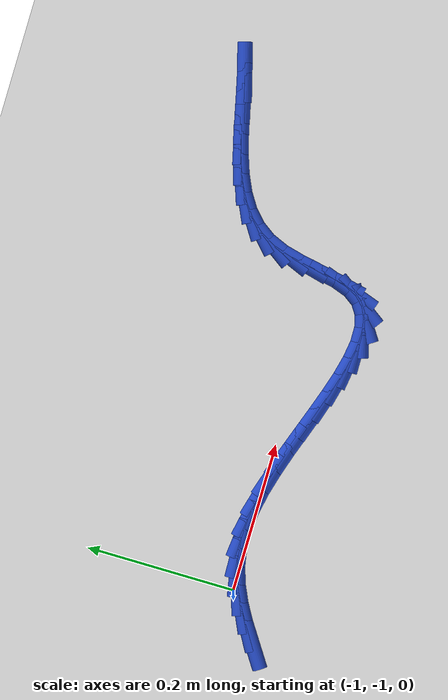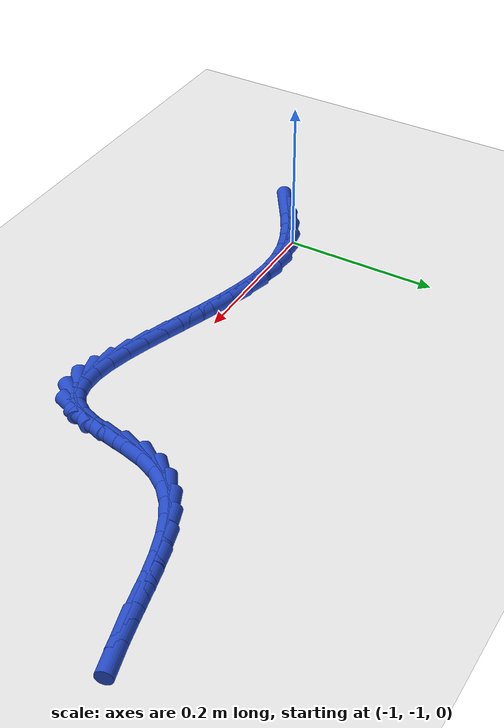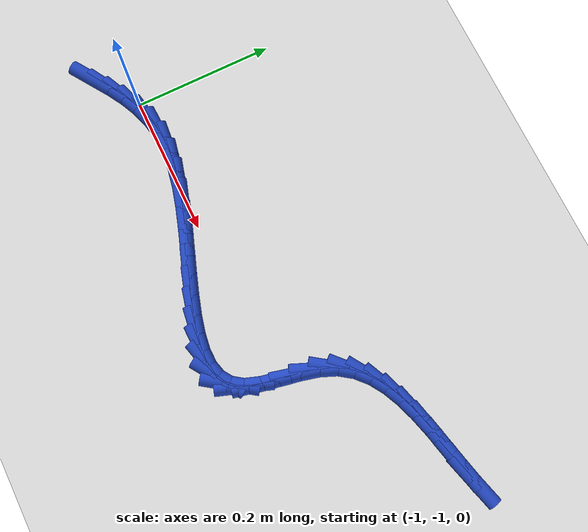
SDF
<sdf version="1.6">
 <world name="default">
  <model name="ground_plane">
   <static>1</static>
   <link name="link">
    <collision name="collision">
     <geometry><plane><normal>0 0 1</normal><size>100 100</size></plane></geometry>
     <surface><friction><ode><mu>100</mu><mu2>50</mu2></ode></friction></surface>
    </collision>
    <visual name="visual">
     <cast_shadows>0</cast_shadows>
     <geometry><plane><normal>0 0 1</normal><size>100 100</size></plane></geometry>
     <material>
      <script><uri>file://media/materials/scripts/gazebo.material</uri><name>Gazebo/WhiteGlow</name></script>
     </material>
    </visual>
   </link>
  </model>
  <model name="line">
   <link name="link_209">
    <pose>-1.0557006349336466 -1.0408302700970928 0.01 0 1.57 0.5857374290560597</pose>
    <collision name="collision">
     <geometry><cylinder><radius>0.01</radius><length>0.08</length></cylinder></geometry>
    </collision>
    <visual name="visual">
     <material>
      <script><name>Gazebo/Blue</name><uri>file://media/materials/scripts/gazebo.material</uri></script>
     </material>
     <geometry><cylinder><radius>0.01</radius><length>0.08</length></cylinder></geometry>
    </visual>
   </link>
   <link name="link_210">
    <pose>-1.0346456365626526 -1.0268623910015922 0.01 0 1.57 0.5234178645726906</pose>
    <collision name="collision">
     <geometry><cylinder><radius>0.01</radius><length>0.08</length></cylinder></geometry>
    </collision>
    <visual name="visual">
     <material>
      <script><name>Gazebo/Blue</name><uri>file://media/materials/scripts/gazebo.material</uri></script>
     </material>
     <geometry><cylinder><radius>0.01</radius><length>0.08</length></cylinder></geometry>
    </visual>
   </link>
   <link name="link_211">
    <pose>-1.0132473027753421 -1.0145132182829506 0.01 0 1.57 0.4349897740252151</pose>
    <collision name="collision">
     <geometry><cylinder><radius>0.01</radius><length>0.08</length></cylinder></geometry>
    </collision>
    <visual name="visual">
     <material>
      <script><name>Gazebo/Blue</name><uri>file://media/materials/scripts/gazebo.material</uri></script>
     </material>
     <geometry><cylinder><radius>0.01</radius><length>0.08</length></cylinder></geometry>
    </visual>
   </link>
   <link name="link_212">
    <pose>-0.9912123797601957 -1.0042741577212928 0.01 0 1.57 0.32106929320845673</pose>
    <collision name="collision">
     <geometry><cylinder><radius>0.01</radius><length>0.08</length></cylinder></geometry>
    </collision>
    <visual name="visual">
     <material>
      <script><name>Gazebo/Blue</name><uri>file://media/materials/scripts/gazebo.material</uri></script>
     </material>
     <geometry><cylinder><radius>0.01</radius><length>0.08</length></cylinder></geometry>
    </visual>
   </link>
   <link name="link_213">
    <pose>-0.9682476137056925 -0.9966366150967435 0.01 0 1.57 0.18572313450105124</pose>
    <collision name="collision">
     <geometry><cylinder><radius>0.01</radius><length>0.08</length></cylinder></geometry>
    </collision>
    <visual name="visual">
     <material>
      <script><name>Gazebo/Blue</name><uri>file://media/materials/scripts/gazebo.material</uri></script>
     </material>
     <geometry><cylinder><radius>0.01</radius><length>0.08</length></cylinder></geometry>
    </visual>
   </link>
   <link name="link_214">
    <pose>-0.9440597508003122 -0.9920919961894272 0.01 0 1.57 0.03750627998569619</pose>
    <collision name="collision">
     <geometry><cylinder><radius>0.01</radius><length>0.08</length></cylinder></geometry>
    </collision>
    <visual name="visual">
     <material>
      <script><name>Gazebo/Blue</name><uri>file://media/materials/scripts/gazebo.material</uri></script>
     </material>
     <geometry><cylinder><radius>0.01</radius><length>0.08</length></cylinder></geometry>
    </visual>
   </link>
   <link name="link_215">
    <pose>-0.918357923162183 -0.9911275639744421 0.01 0 1.57 -0.09862991462200088</pose>
    <collision name="collision">
     <geometry><cylinder><radius>0.01</radius><length>0.08</length></cylinder></geometry>
    </collision>
    <visual name="visual">
     <material>
      <script><name>Gazebo/Blue</name><uri>file://media/materials/scripts/gazebo.material</uri></script>
     </material>
     <geometry><cylinder><radius>0.01</radius><length>0.08</length></cylinder></geometry>
    </visual>
   </link>
   <link name="link_216">
    <pose>-0.8910840752846968 -0.9938263380413902 0.01 0 1.57 -0.1977842412201344</pose>
    <collision name="collision">
     <geometry><cylinder><radius>0.01</radius><length>0.08</length></cylinder></geometry>
    </collision>
    <visual name="visual">
     <material>
      <script><name>Gazebo/Blue</name><uri>file://media/materials/scripts/gazebo.material</uri></script>
     </material>
     <geometry><cylinder><radius>0.01</radius><length>0.08</length></cylinder></geometry>
    </visual>
   </link>
   <link name="link_217">
    <pose>-0.8626049916749433 -0.9995336677197056 0.01 0 1.57 -0.2662324161365486</pose>
    <collision name="collision">
     <geometry><cylinder><radius>0.01</radius><length>0.08</length></cylinder></geometry>
    </collision>
    <visual name="visual">
     <material>
      <script><name>Gazebo/Blue</name><uri>file://media/materials/scripts/gazebo.material</uri></script>
     </material>
     <geometry><cylinder><radius>0.01</radius><length>0.08</length></cylinder></geometry>
    </visual>
   </link>
   <link name="link_218">
    <pose>-0.8333326603073267 -1.007516413372582 0.01 0 1.57 -0.31079991869310475</pose>
    <collision name="collision">
     <geometry><cylinder><radius>0.01</radius><length>0.08</length></cylinder></geometry>
    </collision>
    <visual name="visual">
     <material>
      <script><name>Gazebo/Blue</name><uri>file://media/materials/scripts/gazebo.material</uri></script>
     </material>
     <geometry><cylinder><radius>0.01</radius><length>0.08</length></cylinder></geometry>
    </visual>
   </link>
   <link name="link_219">
    <pose>-0.8036790691562482 -1.0170414353632136 0.01 0 1.57 -0.33565666302193126</pose>
    <collision name="collision">
     <geometry><cylinder><radius>0.01</radius><length>0.08</length></cylinder></geometry>
    </collision>
    <visual name="visual">
     <material>
      <script><name>Gazebo/Blue</name><uri>file://media/materials/scripts/gazebo.material</uri></script>
     </material>
     <geometry><cylinder><radius>0.01</radius><length>0.08</length></cylinder></geometry>
    </visual>
   </link>
   <link name="link_220">
    <pose>-0.7740562061961105 -1.0273755940547946 0.01 0 1.57 -0.34267968783807823</pose>
    <collision name="collision">
     <geometry><cylinder><radius>0.01</radius><length>0.08</length></cylinder></geometry>
    </collision>
    <visual name="visual">
     <material>
      <script><name>Gazebo/Blue</name><uri>file://media/materials/scripts/gazebo.material</uri></script>
     </material>
     <geometry><cylinder><radius>0.01</radius><length>0.08</length></cylinder></geometry>
    </visual>
   </link>
   <link name="link_221">
    <pose>-0.744876059401316 -1.0377857498105196 0.01 0 1.57 -0.3316056495348608</pose>
    <collision name="collision">
     <geometry><cylinder><radius>0.01</radius><length>0.08</length></cylinder></geometry>
    </collision>
    <visual name="visual">
     <material>
      <script><name>Gazebo/Blue</name><uri>file://media/materials/scripts/gazebo.material</uri></script>
     </material>
     <geometry><cylinder><radius>0.01</radius><length>0.08</length></cylinder></geometry>
    </visual>
   </link>
   <link name="link_222">
    <pose>-0.7165506167462664 -1.0475387629935822 0.01 0 1.57 -0.2997462886255494</pose>
    <collision name="collision">
     <geometry><cylinder><radius>0.01</radius><length>0.08</length></cylinder></geometry>
    </collision>
    <visual name="visual">
     <material>
      <script><name>Gazebo/Blue</name><uri>file://media/materials/scripts/gazebo.material</uri></script>
     </material>
     <geometry><cylinder><radius>0.01</radius><length>0.08</length></cylinder></geometry>
    </visual>
   </link>
   <link name="link_223">
    <pose>-0.6894918662053648 -1.055901493967177 0.01 0 1.57 -0.24105481960325634</pose>
    <collision name="collision">
     <geometry><cylinder><radius>0.01</radius><length>0.08</length></cylinder></geometry>
    </collision>
    <visual name="visual">
     <material>
      <script><name>Gazebo/Blue</name><uri>file://media/materials/scripts/gazebo.material</uri></script>
     </material>
     <geometry><cylinder><radius>0.01</radius><length>0.08</length></cylinder></geometry>
    </visual>
   </link>
   <link name="link_224">
    <pose>-0.6641117957530132 -1.062140803094498 0.01 0 1.57 -0.14423966484575768</pose>
    <collision name="collision">
     <geometry><cylinder><radius>0.01</radius><length>0.08</length></cylinder></geometry>
    </collision>
    <visual name="visual">
     <material>
      <script><name>Gazebo/Blue</name><uri>file://media/materials/scripts/gazebo.material</uri></script>
     </material>
     <geometry><cylinder><radius>0.01</radius><length>0.08</length></cylinder></geometry>
    </visual>
   </link>
   <link name="link_225">
    <pose>-0.6408223933636138 -1.0655235507387395 0.01 0 1.57 0.00995570132179325</pose>
    <collision name="collision">
     <geometry><cylinder><radius>0.01</radius><length>0.08</length></cylinder></geometry>
    </collision>
    <visual name="visual">
     <material>
      <script><name>Gazebo/Blue</name><uri>file://media/materials/scripts/gazebo.material</uri></script>
     </material>
     <geometry><cylinder><radius>0.01</radius><length>0.08</length></cylinder></geometry>
    </visual>
   </link>
   <link name="link_226">
    <pose>-0.6200356470115684 -1.0653165972630954 0.01 0 1.57 0.24822885462523567</pose>
    <collision name="collision">
     <geometry><cylinder><radius>0.01</radius><length>0.08</length></cylinder></geometry>
    </collision>
    <visual name="visual">
     <material>
      <script><name>Gazebo/Blue</name><uri>file://media/materials/scripts/gazebo.material</uri></script>
     </material>
     <geometry><cylinder><radius>0.01</radius><length>0.08</length></cylinder></geometry>
    </visual>
   </link>
   <link name="link_227">
    <pose>-0.602163544671281 -1.0607868030307603 0.01 0 1.57 0.5826909568777054</pose>
    <collision name="collision">
     <geometry><cylinder><radius>0.01</radius><length>0.08</length></cylinder></geometry>
    </collision>
    <visual name="visual">
     <material>
      <script><name>Gazebo/Blue</name><uri>file://media/materials/scripts/gazebo.material</uri></script>
     </material>
     <geometry><cylinder><radius>0.01</radius><length>0.08</length></cylinder></geometry>
    </visual>
   </link>
   <link name="link_228">
    <pose>-0.5876180743171526 -1.0512010284049276 0.01 0 1.57 0.9577809718498507</pose>
    <collision name="collision">
     <geometry><cylinder><radius>0.01</radius><length>0.08</length></cylinder></geometry>
    </collision>
    <visual name="visual">
     <material>
      <script><name>Gazebo/Blue</name><uri>file://media/materials/scripts/gazebo.material</uri></script>
     </material>
     <geometry><cylinder><radius>0.01</radius><length>0.08</length></cylinder></geometry>
    </visual>
   </link>
   <link name="link_229">
    <pose>-0.5768070929369183 -1.0358317859778445 0.01 0 1.57 1.2364775871177973</pose>
    <collision name="collision">
     <geometry><cylinder><radius>0.01</radius><length>0.08</length></cylinder></geometry>
    </collision>
    <visual name="visual">
     <material>
      <script><name>Gazebo/Blue</name><uri>file://media/materials/scripts/gazebo.material</uri></script>
     </material>
     <geometry><cylinder><radius>0.01</radius><length>0.08</length></cylinder></geometry>
    </visual>
   </link>
   <link name="link_230">
    <pose>-0.5695069709064345 -1.014815620898844 0.01 0 1.57 1.359098922745308</pose>
    <collision name="collision">
     <geometry><cylinder><radius>0.01</radius><length>0.08</length></cylinder></geometry>
    </collision>
    <visual name="visual">
     <material>
      <script><name>Gazebo/Blue</name><uri>file://media/materials/scripts/gazebo.material</uri></script>
     </material>
     <geometry><cylinder><radius>0.01</radius><length>0.08</length></cylinder></geometry>
    </visual>
   </link>
   <link name="link_231">
    <pose>-0.5641895587738261 -0.990073989638137 0.01 0 1.57 1.3822088389787002</pose>
    <collision name="collision">
     <geometry><cylinder><radius>0.01</radius><length>0.08</length></cylinder></geometry>
    </collision>
    <visual name="visual">
     <material>
      <script><name>Gazebo/Blue</name><uri>file://media/materials/scripts/gazebo.material</uri></script>
     </material>
     <geometry><cylinder><radius>0.01</radius><length>0.08</length></cylinder></geometry>
    </visual>
   </link>
   <link name="link_232">
    <pose>-0.5591653216935556 -0.9637491644864763 0.01 0 1.57 1.3265790494293908</pose>
    <collision name="collision">
     <geometry><cylinder><radius>0.01</radius><length>0.08</length></cylinder></geometry>
    </collision>
    <visual name="visual">
     <material>
      <script><name>Gazebo/Blue</name><uri>file://media/materials/scripts/gazebo.material</uri></script>
     </material>
     <geometry><cylinder><radius>0.01</radius><length>0.08</length></cylinder></geometry>
    </visual>
   </link>
   <link name="link_233">
    <pose>-0.5527447248200847 -0.9379834177346155 0.01 0 1.57 1.1804894335734066</pose>
    <collision name="collision">
     <geometry><cylinder><radius>0.01</radius><length>0.08</length></cylinder></geometry>
    </collision>
    <visual name="visual">
     <material>
      <script><name>Gazebo/Blue</name><uri>file://media/materials/scripts/gazebo.material</uri></script>
     </material>
     <geometry><cylinder><radius>0.01</radius><length>0.08</length></cylinder></geometry>
    </visual>
   </link>
   <link name="link_234">
    <pose>-0.5432499336347916 -0.9149049665410791 0.01 0 1.57 0.9603384092861705</pose>
    <collision name="collision">
     <geometry><cylinder><radius>0.01</radius><length>0.08</length></cylinder></geometry>
    </collision>
    <visual name="visual">
     <material>
      <script><name>Gazebo/Blue</name><uri>file://media/materials/scripts/gazebo.material</uri></script>
     </material>
     <geometry><cylinder><radius>0.01</radius><length>0.08</length></cylinder></geometry>
    </visual>
   </link>
   <link name="link_235">
    <pose>-0.5298018823717645 -0.8956824992820397 0.01 0 1.57 0.7479330998878985</pose>
    <collision name="collision">
     <geometry><cylinder><radius>0.01</radius><length>0.08</length></cylinder></geometry>
    </collision>
    <visual name="visual">
     <material>
      <script><name>Gazebo/Blue</name><uri>file://media/materials/scripts/gazebo.material</uri></script>
     </material>
     <geometry><cylinder><radius>0.01</radius><length>0.08</length></cylinder></geometry>
    </visual>
   </link>
   <link name="link_236">
    <pose>-0.5128186852594856 -0.8799264541689135 0.01 0 1.57 0.570510888059595</pose>
    <collision name="collision">
     <geometry><cylinder><radius>0.01</radius><length>0.08</length></cylinder></geometry>
    </collision>
    <visual name="visual">
     <material>
      <script><name>Gazebo/Blue</name><uri>file://media/materials/scripts/gazebo.material</uri></script>
     </material>
     <geometry><cylinder><radius>0.01</radius><length>0.08</length></cylinder></geometry>
    </visual>
   </link>
   <link name="link_237">
    <pose>-0.4928372456655445 -0.8671045727970825 0.01 0 1.57 0.4346744119793822</pose>
    <collision name="collision">
     <geometry><cylinder><radius>0.01</radius><length>0.08</length></cylinder></geometry>
    </collision>
    <visual name="visual">
     <material>
      <script><name>Gazebo/Blue</name><uri>file://media/materials/scripts/gazebo.material</uri></script>
     </material>
     <geometry><cylinder><radius>0.01</radius><length>0.08</length></cylinder></geometry>
    </visual>
   </link>
   <link name="link_238">
    <pose>-0.4703944669575309 -0.8566845967619282 0.01 0 1.57 0.33747175561373743</pose>
    <collision name="collision">
     <geometry><cylinder><radius>0.01</radius><length>0.08</length></cylinder></geometry>
    </collision>
    <visual name="visual">
     <material>
      <script><name>Gazebo/Blue</name><uri>file://media/materials/scripts/gazebo.material</uri></script>
     </material>
     <geometry><cylinder><radius>0.01</radius><length>0.08</length></cylinder></geometry>
    </visual>
   </link>
   <link name="link_239">
    <pose>-0.446027252503035 -0.8481342676588333 0.01 0 1.57 0.27306672284707373</pose>
    <collision name="collision">
     <geometry><cylinder><radius>0.01</radius><length>0.08</length></cylinder></geometry>
    </collision>
    <visual name="visual">
     <material>
      <script><name>Gazebo/Blue</name><uri>file://media/materials/scripts/gazebo.material</uri></script>
     </material>
     <geometry><cylinder><radius>0.01</radius><length>0.08</length></cylinder></geometry>
    </visual>
   </link>
   <link name="link_240">
    <pose>-0.42027250566964625 -0.8409213270831797 0.01 0 1.57 0.23634518130234144</pose>
    <collision name="collision">
     <geometry><cylinder><radius>0.01</radius><length>0.08</length></cylinder></geometry>
    </collision>
    <visual name="visual">
     <material>
      <script><name>Gazebo/Blue</name><uri>file://media/materials/scripts/gazebo.material</uri></script>
     </material>
     <geometry><cylinder><radius>0.01</radius><length>0.08</length></cylinder></geometry>
    </visual>
   </link>
   <link name="link_241">
    <pose>-0.39366712982495483 -0.8345135166303496 0.01 0 1.57 0.22407565028882012</pose>
    <collision name="collision">
     <geometry><cylinder><radius>0.01</radius><length>0.08</length></cylinder></geometry>
    </collision>
    <visual name="visual">
     <material>
      <script><name>Gazebo/Blue</name><uri>file://media/materials/scripts/gazebo.material</uri></script>
     </material>
     <geometry><cylinder><radius>0.01</radius><length>0.08</length></cylinder></geometry>
    </visual>
   </link>
   <link name="link_242">
    <pose>-0.3667480283365505 -0.8283785778957251 0.01 0 1.57 0.2350952453718307</pose>
    <collision name="collision">
     <geometry><cylinder><radius>0.01</radius><length>0.08</length></cylinder></geometry>
    </collision>
    <visual name="visual">
     <material>
      <script><name>Gazebo/Blue</name><uri>file://media/materials/scripts/gazebo.material</uri></script>
     </material>
     <geometry><cylinder><radius>0.01</radius><length>0.08</length></cylinder></geometry>
    </visual>
   </link>
   <link name="link_243">
    <pose>-0.34005210457202223 -0.8219842524746883 0.01 0 1.57 0.2702870242008387</pose>
    <collision name="collision">
     <geometry><cylinder><radius>0.01</radius><length>0.08</length></cylinder></geometry>
    </collision>
    <visual name="visual">
     <material>
      <script><name>Gazebo/Blue</name><uri>file://media/materials/scripts/gazebo.material</uri></script>
     </material>
     <geometry><cylinder><radius>0.01</radius><length>0.08</length></cylinder></geometry>
    </visual>
   </link>
  </model>
 </world>
</sdf>
